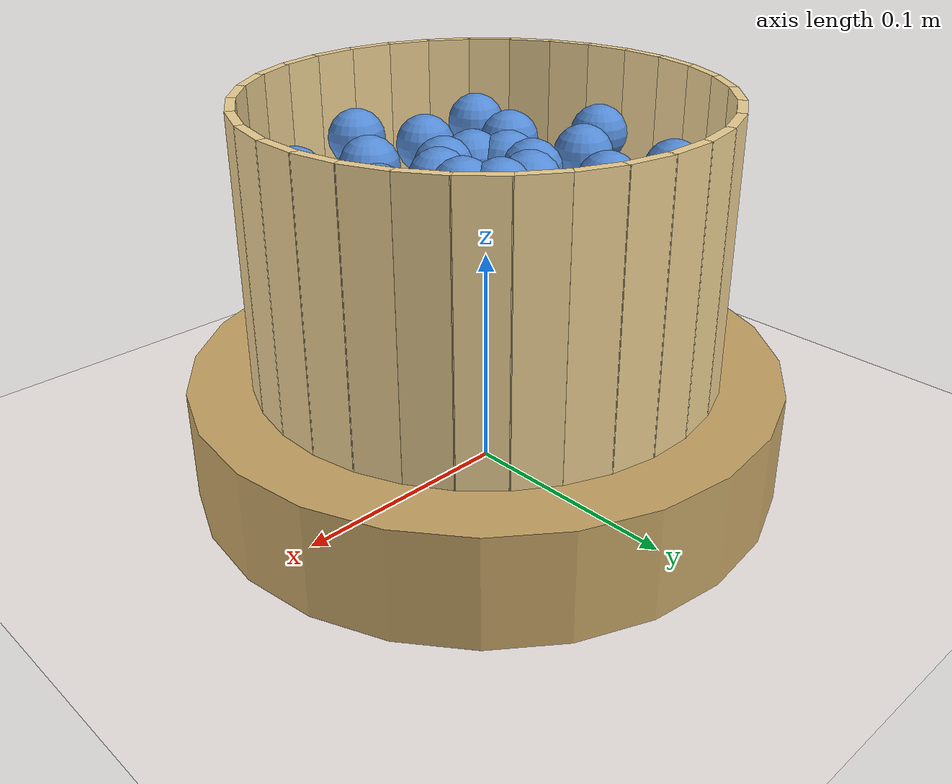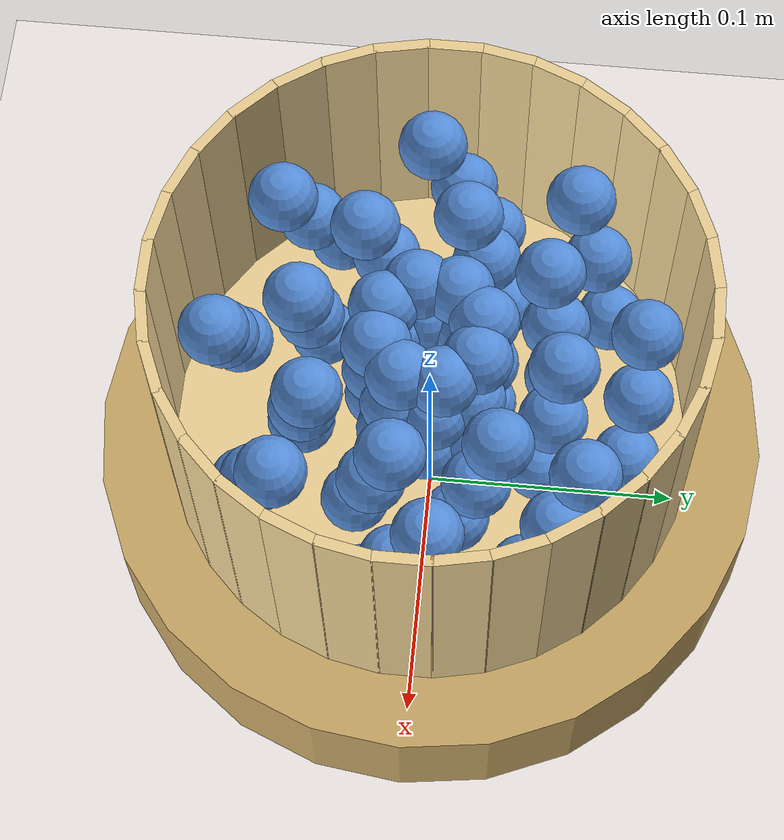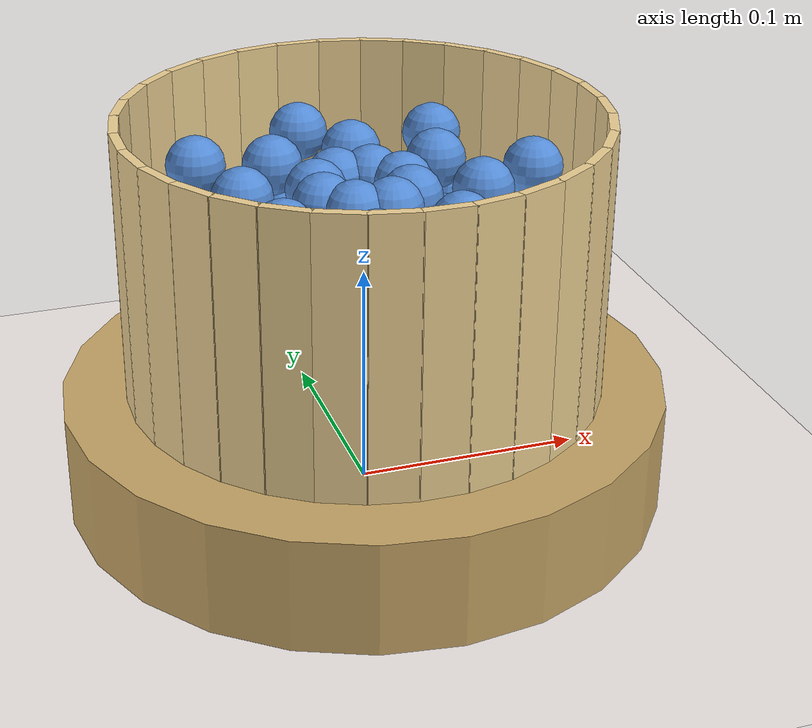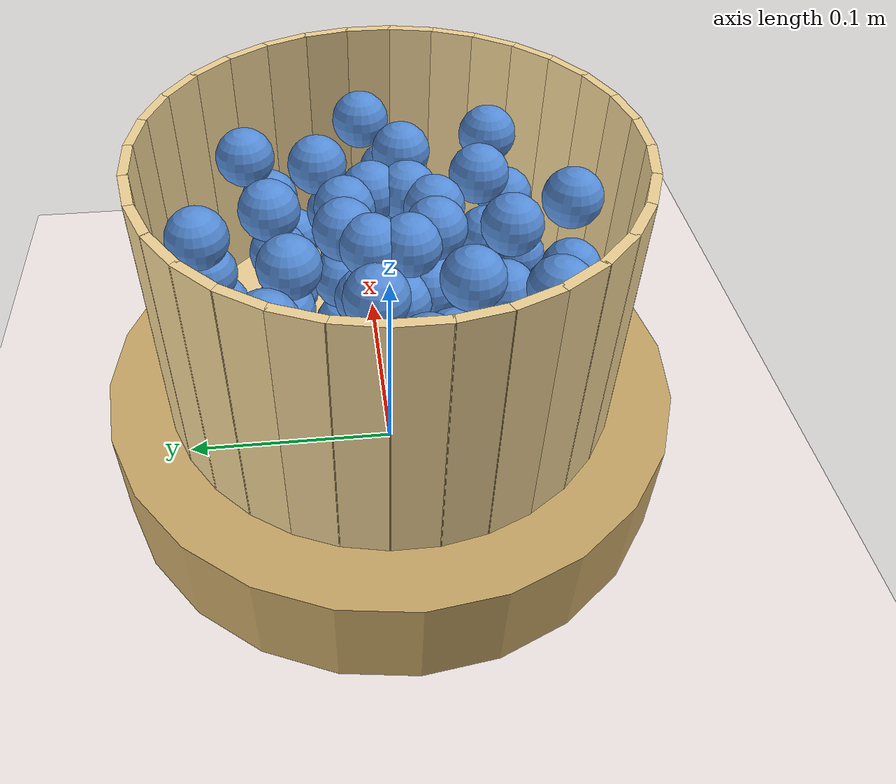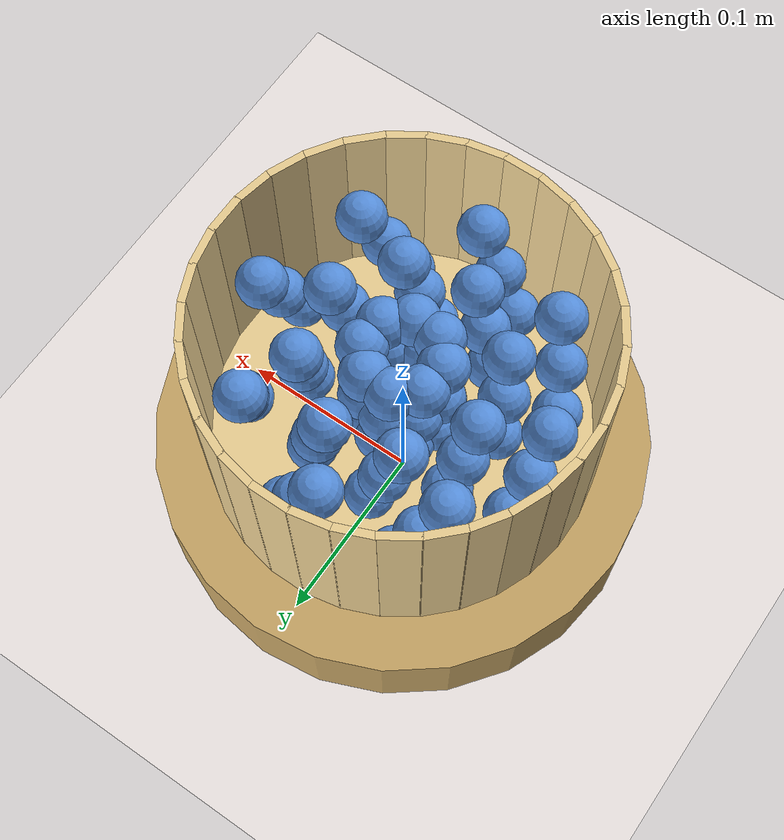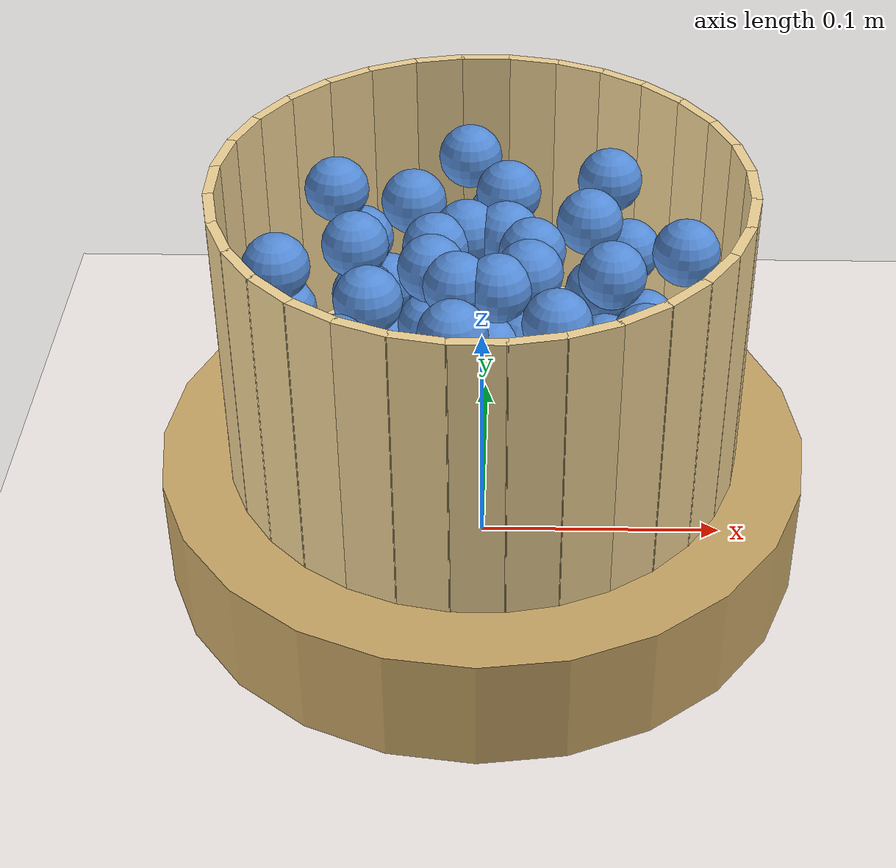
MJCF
<mujoco model="rotating_fluid">
  <compiler angle="radian" coordinate="local" autolimits="true"/>
  <option timestep="0.0008" gravity="0 0 -9.81" integrator="implicitfast"
          impratio="3" cone="elliptic"/>

  <visual>
    <headlight diffuse="0 0 0" ambient="0.50 0.48 0.55" specular="0 0 0"/>
    <rgba haze="0.94 0.91 0.90 1"/>
    <global azimuth="120" elevation="-15" offwidth="1920" offheight="1080" fovy="42"/>
    <quality shadowsize="8192" offsamples="8"/>
    <map shadowclip="6" shadowscale="0.7"/>
  </visual>

  <asset>
    <texture type="skybox" builtin="flat"
             rgb1="0.74 0.68 0.86" rgb2="0.74 0.68 0.86"
             width="512" height="512" mark="none" markrgb="0 0 0"/>
    <material name="floor_mat" rgba="0.94 0.91 0.90 1" specular="0" shininess="0"/>
    <material name="wood_dark" rgba="0.78 0.65 0.40 1" specular="0.1" shininess="0.1"/>
    <material name="bucket"    rgba="0.93 0.82 0.58 1" specular="0.2" shininess="0.3"/>
    <material name="water"     rgba="0.34 0.56 0.86 1" specular="0.6" shininess="0.7"/>
  </asset>

  <default>
    <geom solref="0.004 1" solimp="0.95 0.99 0.001"/>
  </default>

  <worldbody>
    <light pos="0 0 12" dir="-0.30 0.55 -1" directional="true" castshadow="true"
           diffuse="0.85 0.82 0.78" specular="0.15 0.15 0.15"/>
    <light pos="0 0 8" dir="0.40 -0.30 -1" directional="true" castshadow="false"
           diffuse="0.28 0.28 0.34" specular="0 0 0"/>

    <geom name="floor" type="plane" size="40 40 0.1" material="floor_mat"/>

    <!-- A short pedestal so the bucket sits at a viewable height. -->
    <geom type="cylinder" pos="0 0 0.025" size="0.13 0.025" material="wood_dark"/>

    <body name="bucket" pos="0 0 0.05">
      <joint name="bucket_spin" type="hinge" axis="0 0 1"/>
      <!-- Heavy bottom disc -->
      <geom name="bottom" type="cylinder"
            pos="0 0 0.0060" size="0.1 0.0060"
            material="bucket" mass="12.0"/>
      <!-- Ring of 32 wall segments -->
      <geom name="wall0" type="box" pos="0.1000 0.0000 0.0600" euler="0 0 1.57080" size="0.0103 0.0020 0.0600" material="bucket"/>
      <geom name="wall1" type="box" pos="0.0981 0.0195 0.0600" euler="0 0 1.76715" size="0.0103 0.0020 0.0600" material="bucket"/>
      <geom name="wall2" type="box" pos="0.0924 0.0383 0.0600" euler="0 0 1.96350" size="0.0103 0.0020 0.0600" material="bucket"/>
      <geom name="wall3" type="box" pos="0.0831 0.0556 0.0600" euler="0 0 2.15984" size="0.0103 0.0020 0.0600" material="bucket"/>
      <geom name="wall4" type="box" pos="0.0707 0.0707 0.0600" euler="0 0 2.35619" size="0.0103 0.0020 0.0600" material="bucket"/>
      <geom name="wall5" type="box" pos="0.0556 0.0831 0.0600" euler="0 0 2.55254" size="0.0103 0.0020 0.0600" material="bucket"/>
      <geom name="wall6" type="box" pos="0.0383 0.0924 0.0600" euler="0 0 2.74889" size="0.0103 0.0020 0.0600" material="bucket"/>
      <geom name="wall7" type="box" pos="0.0195 0.0981 0.0600" euler="0 0 2.94524" size="0.0103 0.0020 0.0600" material="bucket"/>
      <geom name="wall8" type="box" pos="0.0000 0.1000 0.0600" euler="0 0 3.14159" size="0.0103 0.0020 0.0600" material="bucket"/>
      <geom name="wall9" type="box" pos="-0.0195 0.0981 0.0600" euler="0 0 3.33794" size="0.0103 0.0020 0.0600" material="bucket"/>
      <geom name="wall10" type="box" pos="-0.0383 0.0924 0.0600" euler="0 0 3.53429" size="0.0103 0.0020 0.0600" material="bucket"/>
      <geom name="wall11" type="box" pos="-0.0556 0.0831 0.0600" euler="0 0 3.73064" size="0.0103 0.0020 0.0600" material="bucket"/>
      <geom name="wall12" type="box" pos="-0.0707 0.0707 0.0600" euler="0 0 3.92699" size="0.0103 0.0020 0.0600" material="bucket"/>
      <geom name="wall13" type="box" pos="-0.0831 0.0556 0.0600" euler="0 0 4.12334" size="0.0103 0.0020 0.0600" material="bucket"/>
      <geom name="wall14" type="box" pos="-0.0924 0.0383 0.0600" euler="0 0 4.31969" size="0.0103 0.0020 0.0600" material="bucket"/>
      <geom name="wall15" type="box" pos="-0.0981 0.0195 0.0600" euler="0 0 4.51604" size="0.0103 0.0020 0.0600" material="bucket"/>
      <geom name="wall16" type="box" pos="-0.1000 0.0000 0.0600" euler="0 0 4.71239" size="0.0103 0.0020 0.0600" material="bucket"/>
      <geom name="wall17" type="box" pos="-0.0981 -0.0195 0.0600" euler="0 0 4.90874" size="0.0103 0.0020 0.0600" material="bucket"/>
      <geom name="wall18" type="box" pos="-0.0924 -0.0383 0.0600" euler="0 0 5.10509" size="0.0103 0.0020 0.0600" material="bucket"/>
      <geom name="wall19" type="box" pos="-0.0831 -0.0556 0.0600" euler="0 0 5.30144" size="0.0103 0.0020 0.0600" material="bucket"/>
      <geom name="wall20" type="box" pos="-0.0707 -0.0707 0.0600" euler="0 0 5.49779" size="0.0103 0.0020 0.0600" material="bucket"/>
      <geom name="wall21" type="box" pos="-0.0556 -0.0831 0.0600" euler="0 0 5.69414" size="0.0103 0.0020 0.0600" material="bucket"/>
      <geom name="wall22" type="box" pos="-0.0383 -0.0924 0.0600" euler="0 0 5.89049" size="0.0103 0.0020 0.0600" material="bucket"/>
      <geom name="wall23" type="box" pos="-0.0195 -0.0981 0.0600" euler="0 0 6.08684" size="0.0103 0.0020 0.0600" material="bucket"/>
      <geom name="wall24" type="box" pos="-0.0000 -0.1000 0.0600" euler="0 0 6.28319" size="0.0103 0.0020 0.0600" material="bucket"/>
      <geom name="wall25" type="box" pos="0.0195 -0.0981 0.0600" euler="0 0 6.47953" size="0.0103 0.0020 0.0600" material="bucket"/>
      <geom name="wall26" type="box" pos="0.0383 -0.0924 0.0600" euler="0 0 6.67588" size="0.0103 0.0020 0.0600" material="bucket"/>
      <geom name="wall27" type="box" pos="0.0556 -0.0831 0.0600" euler="0 0 6.87223" size="0.0103 0.0020 0.0600" material="bucket"/>
      <geom name="wall28" type="box" pos="0.0707 -0.0707 0.0600" euler="0 0 7.06858" size="0.0103 0.0020 0.0600" material="bucket"/>
      <geom name="wall29" type="box" pos="0.0831 -0.0556 0.0600" euler="0 0 7.26493" size="0.0103 0.0020 0.0600" material="bucket"/>
      <geom name="wall30" type="box" pos="0.0924 -0.0383 0.0600" euler="0 0 7.46128" size="0.0103 0.0020 0.0600" material="bucket"/>
      <geom name="wall31" type="box" pos="0.0981 -0.0195 0.0600" euler="0 0 7.65763" size="0.0103 0.0020 0.0600" material="bucket"/>
    </body>

    <!-- 72 "fluid" balls (granular) -->
    <body name="b_0_0_0" pos="0.0200 0.0000 0.0800">
      <freejoint/>
      <geom type="sphere" size="0.013" mass="0.01" material="water" friction="0.10 0.005 0.0001"/>
    </body>
    <body name="b_0_0_1" pos="0.0141 0.0141 0.0800">
      <freejoint/>
      <geom type="sphere" size="0.013" mass="0.01" material="water" friction="0.10 0.005 0.0001"/>
    </body>
    <body name="b_0_0_2" pos="0.0000 0.0200 0.0800">
      <freejoint/>
      <geom type="sphere" size="0.013" mass="0.01" material="water" friction="0.10 0.005 0.0001"/>
    </body>
    <body name="b_0_0_3" pos="-0.0141 0.0141 0.0800">
      <freejoint/>
      <geom type="sphere" size="0.013" mass="0.01" material="water" friction="0.10 0.005 0.0001"/>
    </body>
    <body name="b_0_0_4" pos="-0.0200 0.0000 0.0800">
      <freejoint/>
      <geom type="sphere" size="0.013" mass="0.01" material="water" friction="0.10 0.005 0.0001"/>
    </body>
    <body name="b_0_0_5" pos="-0.0141 -0.0141 0.0800">
      <freejoint/>
      <geom type="sphere" size="0.013" mass="0.01" material="water" friction="0.10 0.005 0.0001"/>
    </body>
    <body name="b_0_0_6" pos="-0.0000 -0.0200 0.0800">
      <freejoint/>
      <geom type="sphere" size="0.013" mass="0.01" material="water" friction="0.10 0.005 0.0001"/>
    </body>
    <body name="b_0_0_7" pos="0.0141 -0.0141 0.0800">
      <freejoint/>
      <geom type="sphere" size="0.013" mass="0.01" material="water" friction="0.10 0.005 0.0001"/>
    </body>
    <body name="b_0_1_0" pos="0.0481 0.0136 0.0800">
      <freejoint/>
      <geom type="sphere" size="0.013" mass="0.01" material="water" friction="0.10 0.005 0.0001"/>
    </body>
    <body name="b_0_1_1" pos="0.0244 0.0436 0.0800">
      <freejoint/>
      <geom type="sphere" size="0.013" mass="0.01" material="water" friction="0.10 0.005 0.0001"/>
    </body>
    <body name="b_0_1_2" pos="-0.0136 0.0481 0.0800">
      <freejoint/>
      <geom type="sphere" size="0.013" mass="0.01" material="water" friction="0.10 0.005 0.0001"/>
    </body>
    <body name="b_0_1_3" pos="-0.0436 0.0244 0.0800">
      <freejoint/>
      <geom type="sphere" size="0.013" mass="0.01" material="water" friction="0.10 0.005 0.0001"/>
    </body>
    <body name="b_0_1_4" pos="-0.0481 -0.0136 0.0800">
      <freejoint/>
      <geom type="sphere" size="0.013" mass="0.01" material="water" friction="0.10 0.005 0.0001"/>
    </body>
    <body name="b_0_1_5" pos="-0.0244 -0.0436 0.0800">
      <freejoint/>
      <geom type="sphere" size="0.013" mass="0.01" material="water" friction="0.10 0.005 0.0001"/>
    </body>
    <body name="b_0_1_6" pos="0.0136 -0.0481 0.0800">
      <freejoint/>
      <geom type="sphere" size="0.013" mass="0.01" material="water" friction="0.10 0.005 0.0001"/>
    </body>
    <body name="b_0_1_7" pos="0.0436 -0.0244 0.0800">
      <freejoint/>
      <geom type="sphere" size="0.013" mass="0.01" material="water" friction="0.10 0.005 0.0001"/>
    </body>
    <body name="b_0_2_0" pos="0.0665 0.0408 0.0800">
      <freejoint/>
      <geom type="sphere" size="0.013" mass="0.01" material="water" friction="0.10 0.005 0.0001"/>
    </body>
    <body name="b_0_2_1" pos="0.0182 0.0758 0.0800">
      <freejoint/>
      <geom type="sphere" size="0.013" mass="0.01" material="water" friction="0.10 0.005 0.0001"/>
    </body>
    <body name="b_0_2_2" pos="-0.0408 0.0665 0.0800">
      <freejoint/>
      <geom type="sphere" size="0.013" mass="0.01" material="water" friction="0.10 0.005 0.0001"/>
    </body>
    <body name="b_0_2_3" pos="-0.0758 0.0182 0.0800">
      <freejoint/>
      <geom type="sphere" size="0.013" mass="0.01" material="water" friction="0.10 0.005 0.0001"/>
    </body>
    <body name="b_0_2_4" pos="-0.0665 -0.0408 0.0800">
      <freejoint/>
      <geom type="sphere" size="0.013" mass="0.01" material="water" friction="0.10 0.005 0.0001"/>
    </body>
    <body name="b_0_2_5" pos="-0.0182 -0.0758 0.0800">
      <freejoint/>
      <geom type="sphere" size="0.013" mass="0.01" material="water" friction="0.10 0.005 0.0001"/>
    </body>
    <body name="b_0_2_6" pos="0.0408 -0.0665 0.0800">
      <freejoint/>
      <geom type="sphere" size="0.013" mass="0.01" material="water" friction="0.10 0.005 0.0001"/>
    </body>
    <body name="b_0_2_7" pos="0.0758 -0.0182 0.0800">
      <freejoint/>
      <geom type="sphere" size="0.013" mass="0.01" material="water" friction="0.10 0.005 0.0001"/>
    </body>
    <body name="b_1_0_0" pos="0.0198 0.0031 0.1080">
      <freejoint/>
      <geom type="sphere" size="0.013" mass="0.01" material="water" friction="0.10 0.005 0.0001"/>
    </body>
    <body name="b_1_0_1" pos="0.0118 0.0162 0.1080">
      <freejoint/>
      <geom type="sphere" size="0.013" mass="0.01" material="water" friction="0.10 0.005 0.0001"/>
    </body>
    <body name="b_1_0_2" pos="-0.0031 0.0198 0.1080">
      <freejoint/>
      <geom type="sphere" size="0.013" mass="0.01" material="water" friction="0.10 0.005 0.0001"/>
    </body>
    <body name="b_1_0_3" pos="-0.0162 0.0118 0.1080">
      <freejoint/>
      <geom type="sphere" size="0.013" mass="0.01" material="water" friction="0.10 0.005 0.0001"/>
    </body>
    <body name="b_1_0_4" pos="-0.0198 -0.0031 0.1080">
      <freejoint/>
      <geom type="sphere" size="0.013" mass="0.01" material="water" friction="0.10 0.005 0.0001"/>
    </body>
    <body name="b_1_0_5" pos="-0.0118 -0.0162 0.1080">
      <freejoint/>
      <geom type="sphere" size="0.013" mass="0.01" material="water" friction="0.10 0.005 0.0001"/>
    </body>
    <body name="b_1_0_6" pos="0.0031 -0.0198 0.1080">
      <freejoint/>
      <geom type="sphere" size="0.013" mass="0.01" material="water" friction="0.10 0.005 0.0001"/>
    </body>
    <body name="b_1_0_7" pos="0.0162 -0.0118 0.1080">
      <freejoint/>
      <geom type="sphere" size="0.013" mass="0.01" material="water" friction="0.10 0.005 0.0001"/>
    </body>
    <body name="b_1_1_0" pos="0.0454 0.0209 0.1080">
      <freejoint/>
      <geom type="sphere" size="0.013" mass="0.01" material="water" friction="0.10 0.005 0.0001"/>
    </body>
    <body name="b_1_1_1" pos="0.0173 0.0469 0.1080">
      <freejoint/>
      <geom type="sphere" size="0.013" mass="0.01" material="water" friction="0.10 0.005 0.0001"/>
    </body>
    <body name="b_1_1_2" pos="-0.0209 0.0454 0.1080">
      <freejoint/>
      <geom type="sphere" size="0.013" mass="0.01" material="water" friction="0.10 0.005 0.0001"/>
    </body>
    <body name="b_1_1_3" pos="-0.0469 0.0173 0.1080">
      <freejoint/>
      <geom type="sphere" size="0.013" mass="0.01" material="water" friction="0.10 0.005 0.0001"/>
    </body>
    <body name="b_1_1_4" pos="-0.0454 -0.0209 0.1080">
      <freejoint/>
      <geom type="sphere" size="0.013" mass="0.01" material="water" friction="0.10 0.005 0.0001"/>
    </body>
    <body name="b_1_1_5" pos="-0.0173 -0.0469 0.1080">
      <freejoint/>
      <geom type="sphere" size="0.013" mass="0.01" material="water" friction="0.10 0.005 0.0001"/>
    </body>
    <body name="b_1_1_6" pos="0.0209 -0.0454 0.1080">
      <freejoint/>
      <geom type="sphere" size="0.013" mass="0.01" material="water" friction="0.10 0.005 0.0001"/>
    </body>
    <body name="b_1_1_7" pos="0.0469 -0.0173 0.1080">
      <freejoint/>
      <geom type="sphere" size="0.013" mass="0.01" material="water" friction="0.10 0.005 0.0001"/>
    </body>
    <body name="b_1_2_0" pos="0.0593 0.0507 0.1080">
      <freejoint/>
      <geom type="sphere" size="0.013" mass="0.01" material="water" friction="0.10 0.005 0.0001"/>
    </body>
    <body name="b_1_2_1" pos="0.0061 0.0778 0.1080">
      <freejoint/>
      <geom type="sphere" size="0.013" mass="0.01" material="water" friction="0.10 0.005 0.0001"/>
    </body>
    <body name="b_1_2_2" pos="-0.0507 0.0593 0.1080">
      <freejoint/>
      <geom type="sphere" size="0.013" mass="0.01" material="water" friction="0.10 0.005 0.0001"/>
    </body>
    <body name="b_1_2_3" pos="-0.0778 0.0061 0.1080">
      <freejoint/>
      <geom type="sphere" size="0.013" mass="0.01" material="water" friction="0.10 0.005 0.0001"/>
    </body>
    <body name="b_1_2_4" pos="-0.0593 -0.0507 0.1080">
      <freejoint/>
      <geom type="sphere" size="0.013" mass="0.01" material="water" friction="0.10 0.005 0.0001"/>
    </body>
    <body name="b_1_2_5" pos="-0.0061 -0.0778 0.1080">
      <freejoint/>
      <geom type="sphere" size="0.013" mass="0.01" material="water" friction="0.10 0.005 0.0001"/>
    </body>
    <body name="b_1_2_6" pos="0.0507 -0.0593 0.1080">
      <freejoint/>
      <geom type="sphere" size="0.013" mass="0.01" material="water" friction="0.10 0.005 0.0001"/>
    </body>
    <body name="b_1_2_7" pos="0.0778 -0.0061 0.1080">
      <freejoint/>
      <geom type="sphere" size="0.013" mass="0.01" material="water" friction="0.10 0.005 0.0001"/>
    </body>
    <body name="b_2_0_0" pos="0.0190 0.0062 0.1360">
      <freejoint/>
      <geom type="sphere" size="0.013" mass="0.01" material="water" friction="0.10 0.005 0.0001"/>
    </body>
    <body name="b_2_0_1" pos="0.0091 0.0178 0.1360">
      <freejoint/>
      <geom type="sphere" size="0.013" mass="0.01" material="water" friction="0.10 0.005 0.0001"/>
    </body>
    <body name="b_2_0_2" pos="-0.0062 0.0190 0.1360">
      <freejoint/>
      <geom type="sphere" size="0.013" mass="0.01" material="water" friction="0.10 0.005 0.0001"/>
    </body>
    <body name="b_2_0_3" pos="-0.0178 0.0091 0.1360">
      <freejoint/>
      <geom type="sphere" size="0.013" mass="0.01" material="water" friction="0.10 0.005 0.0001"/>
    </body>
    <body name="b_2_0_4" pos="-0.0190 -0.0062 0.1360">
      <freejoint/>
      <geom type="sphere" size="0.013" mass="0.01" material="water" friction="0.10 0.005 0.0001"/>
    </body>
    <body name="b_2_0_5" pos="-0.0091 -0.0178 0.1360">
      <freejoint/>
      <geom type="sphere" size="0.013" mass="0.01" material="water" friction="0.10 0.005 0.0001"/>
    </body>
    <body name="b_2_0_6" pos="0.0062 -0.0190 0.1360">
      <freejoint/>
      <geom type="sphere" size="0.013" mass="0.01" material="water" friction="0.10 0.005 0.0001"/>
    </body>
    <body name="b_2_0_7" pos="0.0178 -0.0091 0.1360">
      <freejoint/>
      <geom type="sphere" size="0.013" mass="0.01" material="water" friction="0.10 0.005 0.0001"/>
    </body>
    <body name="b_2_1_0" pos="0.0416 0.0278 0.1360">
      <freejoint/>
      <geom type="sphere" size="0.013" mass="0.01" material="water" friction="0.10 0.005 0.0001"/>
    </body>
    <body name="b_2_1_1" pos="0.0098 0.0490 0.1360">
      <freejoint/>
      <geom type="sphere" size="0.013" mass="0.01" material="water" friction="0.10 0.005 0.0001"/>
    </body>
    <body name="b_2_1_2" pos="-0.0278 0.0416 0.1360">
      <freejoint/>
      <geom type="sphere" size="0.013" mass="0.01" material="water" friction="0.10 0.005 0.0001"/>
    </body>
    <body name="b_2_1_3" pos="-0.0490 0.0098 0.1360">
      <freejoint/>
      <geom type="sphere" size="0.013" mass="0.01" material="water" friction="0.10 0.005 0.0001"/>
    </body>
    <body name="b_2_1_4" pos="-0.0416 -0.0278 0.1360">
      <freejoint/>
      <geom type="sphere" size="0.013" mass="0.01" material="water" friction="0.10 0.005 0.0001"/>
    </body>
    <body name="b_2_1_5" pos="-0.0098 -0.0490 0.1360">
      <freejoint/>
      <geom type="sphere" size="0.013" mass="0.01" material="water" friction="0.10 0.005 0.0001"/>
    </body>
    <body name="b_2_1_6" pos="0.0278 -0.0416 0.1360">
      <freejoint/>
      <geom type="sphere" size="0.013" mass="0.01" material="water" friction="0.10 0.005 0.0001"/>
    </body>
    <body name="b_2_1_7" pos="0.0490 -0.0098 0.1360">
      <freejoint/>
      <geom type="sphere" size="0.013" mass="0.01" material="water" friction="0.10 0.005 0.0001"/>
    </body>
    <body name="b_2_2_0" pos="0.0507 0.0593 0.1360">
      <freejoint/>
      <geom type="sphere" size="0.013" mass="0.01" material="water" friction="0.10 0.005 0.0001"/>
    </body>
    <body name="b_2_2_1" pos="-0.0061 0.0778 0.1360">
      <freejoint/>
      <geom type="sphere" size="0.013" mass="0.01" material="water" friction="0.10 0.005 0.0001"/>
    </body>
    <body name="b_2_2_2" pos="-0.0593 0.0507 0.1360">
      <freejoint/>
      <geom type="sphere" size="0.013" mass="0.01" material="water" friction="0.10 0.005 0.0001"/>
    </body>
    <body name="b_2_2_3" pos="-0.0778 -0.0061 0.1360">
      <freejoint/>
      <geom type="sphere" size="0.013" mass="0.01" material="water" friction="0.10 0.005 0.0001"/>
    </body>
    <body name="b_2_2_4" pos="-0.0507 -0.0593 0.1360">
      <freejoint/>
      <geom type="sphere" size="0.013" mass="0.01" material="water" friction="0.10 0.005 0.0001"/>
    </body>
    <body name="b_2_2_5" pos="0.0061 -0.0778 0.1360">
      <freejoint/>
      <geom type="sphere" size="0.013" mass="0.01" material="water" friction="0.10 0.005 0.0001"/>
    </body>
    <body name="b_2_2_6" pos="0.0593 -0.0507 0.1360">
      <freejoint/>
      <geom type="sphere" size="0.013" mass="0.01" material="water" friction="0.10 0.005 0.0001"/>
    </body>
    <body name="b_2_2_7" pos="0.0778 0.0061 0.1360">
      <freejoint/>
      <geom type="sphere" size="0.013" mass="0.01" material="water" friction="0.10 0.005 0.0001"/>
    </body>

    <camera name="cam" pos="0 0 0.50" fovy="32"
            xyaxes="1 0 0   0 1 0"/>
  </worldbody>
</mujoco>
